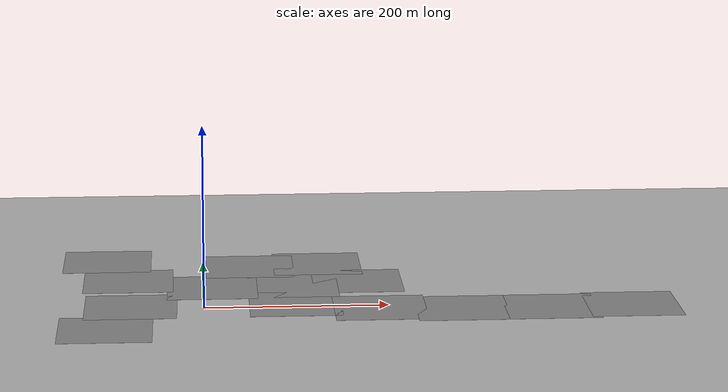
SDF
<sdf version="1.6">
 <world name="default">
  <light name="sun" type="directional">
   <pose>0 0 10 0 -0 0</pose>
   <diffuse>0.8 0.8 0.8 1</diffuse>
   <specular>0.2 0.2 0.2 1</specular>
   <attenuation>
    <range>1000</range>
    <constant>0.9</constant>
    <linear>0.01</linear>
    <quadratic>0.001</quadratic>
   </attenuation>
   <direction>-0.5 0.1 -0.9</direction>
  </light>
  <model name="ground_plane">
   <static>1</static>
   <link name="link">
    <collision name="collision">
     <geometry><plane><normal>0 0 1</normal><size>100 100</size></plane></geometry>
     <surface><friction><ode><mu>100</mu><mu2>50</mu2></ode></friction></surface>
    </collision>
    <visual name="visual">
     <cast_shadows>0</cast_shadows>
     <geometry><plane><normal>0 0 1</normal><size>100 100</size></plane></geometry>
     <material>
      <script><uri>file://media/materials/scripts/gazebo.material</uri><name>Gazebo/Grey</name></script>
     </material>
    </visual>
   </link>
  </model>
  <gravity>0 0 -9.8</gravity>
  <magnetic_field>6e-06 2.3e-05 -4.2e-05</magnetic_field>
  <atmosphere type="adiabatic"/>
  <physics name="default_physics" default="0" type="ode">
   <max_step_size>0.001</max_step_size>
   <real_time_factor>1</real_time_factor>
   <real_time_update_rate>1000</real_time_update_rate>
  </physics>
  <scene><ambient>0.4 0.4 0.4 1</ambient><background>0.7 0.7 0.7 1</background><shadows>1</shadows></scene>
  <spherical_coordinates>
   <surface_model>EARTH_WGS84</surface_model>
   <latitude_deg>0</latitude_deg>
   <longitude_deg>0</longitude_deg>
   <elevation>0</elevation>
   <heading_deg>0</heading_deg>
  </spherical_coordinates>
  <model name="ground_plane_0">
   <static>1</static>
   <link name="link">
    <collision name="collision">
     <geometry><plane><normal>0 0 1</normal><size>100 100</size></plane></geometry>
     <surface><friction><ode><mu>100</mu><mu2>50</mu2></ode></friction></surface>
    </collision>
    <visual name="visual">
     <cast_shadows>0</cast_shadows>
     <geometry><plane><normal>0 0 1</normal><size>100 100</size></plane></geometry>
     <material>
      <script><uri>file://media/materials/scripts/gazebo.material</uri><name>Gazebo/Grey</name></script>
     </material>
    </visual>
   </link>
   <pose>9.08164 85.6529 0 0 -0 0</pose>
  </model>
  <model name="ground_plane_1">
   <static>1</static>
   <link name="link">
    <collision name="collision">
     <geometry><plane><normal>0 0 1</normal><size>100 100</size></plane></geometry>
     <surface><friction><ode><mu>100</mu><mu2>50</mu2></ode></friction></surface>
    </collision>
    <visual name="visual">
     <cast_shadows>0</cast_shadows>
     <geometry><plane><normal>0 0 1</normal><size>100 100</size></plane></geometry>
     <material>
      <script><uri>file://media/materials/scripts/gazebo.material</uri><name>Gazebo/Grey</name></script>
     </material>
    </visual>
   </link>
   <pose>52.689 178.198 0 0 -0 0</pose>
  </model>
  <model name="ground_plane_2">
   <static>1</static>
   <link name="link">
    <collision name="collision">
     <geometry><plane><normal>0 0 1</normal><size>100 100</size></plane></geometry>
     <surface><friction><ode><mu>100</mu><mu2>50</mu2></ode></friction></surface>
    </collision>
    <visual name="visual">
     <cast_shadows>0</cast_shadows>
     <geometry><plane><normal>0 0 1</normal><size>100 100</size></plane></geometry>
     <material>
      <script><uri>file://media/materials/scripts/gazebo.material</uri><name>Gazebo/Grey</name></script>
     </material>
    </visual>
   </link>
   <pose>98.8791 88.8546 0 0 -0 0</pose>
  </model>
  <model name="ground_plane_3">
   <static>1</static>
   <link name="link">
    <collision name="collision">
     <geometry><plane><normal>0 0 1</normal><size>100 100</size></plane></geometry>
     <surface><friction><ode><mu>100</mu><mu2>50</mu2></ode></friction></surface>
    </collision>
    <visual name="visual">
     <cast_shadows>0</cast_shadows>
     <geometry><plane><normal>0 0 1</normal><size>100 100</size></plane></geometry>
     <material>
      <script><uri>file://media/materials/scripts/gazebo.material</uri><name>Gazebo/Grey</name></script>
     </material>
    </visual>
   </link>
   <pose>98.5092 10.0116 0 0 -0 0</pose>
  </model>
  <model name="ground_plane_4">
   <static>1</static>
   <link name="link">
    <collision name="collision">
     <geometry><plane><normal>0 0 1</normal><size>100 100</size></plane></geometry>
     <surface><friction><ode><mu>100</mu><mu2>50</mu2></ode></friction></surface>
    </collision>
    <visual name="visual">
     <cast_shadows>0</cast_shadows>
     <geometry><plane><normal>0 0 1</normal><size>100 100</size></plane></geometry>
     <material>
      <script><uri>file://media/materials/scripts/gazebo.material</uri><name>Gazebo/Grey</name></script>
     </material>
    </visual>
   </link>
   <pose>-84.1094 119.088 0 0 -0 0</pose>
  </model>
  <model name="ground_plane_5">
   <static>1</static>
   <link name="link">
    <collision name="collision">
     <geometry><plane><normal>0 0 1</normal><size>100 100</size></plane></geometry>
     <surface><friction><ode><mu>100</mu><mu2>50</mu2></ode></friction></surface>
    </collision>
    <visual name="visual">
     <cast_shadows>0</cast_shadows>
     <geometry><plane><normal>0 0 1</normal><size>100 100</size></plane></geometry>
     <material>
      <script><uri>file://media/materials/scripts/gazebo.material</uri><name>Gazebo/Grey</name></script>
     </material>
    </visual>
   </link>
   <pose>-109.728 210.299 0 0 -0 0</pose>
  </model>
  <model name="ground_plane_6">
   <static>1</static>
   <link name="link">
    <collision name="collision">
     <geometry><plane><normal>0 0 1</normal><size>100 100</size></plane></geometry>
     <surface><friction><ode><mu>100</mu><mu2>50</mu2></ode></friction></surface>
    </collision>
    <visual name="visual">
     <cast_shadows>0</cast_shadows>
     <geometry><plane><normal>0 0 1</normal><size>100 100</size></plane></geometry>
     <material>
      <script><uri>file://media/materials/scripts/gazebo.material</uri><name>Gazebo/Grey</name></script>
     </material>
    </visual>
   </link>
   <pose>-79.8518 8.27536 0 0 -0 0</pose>
  </model>
  <model name="ground_plane_7">
   <static>1</static>
   <link name="link">
    <collision name="collision">
     <geometry><plane><normal>0 0 1</normal><size>100 100</size></plane></geometry>
     <surface><friction><ode><mu>100</mu><mu2>50</mu2></ode></friction></surface>
    </collision>
    <visual name="visual">
     <cast_shadows>0</cast_shadows>
     <geometry><plane><normal>0 0 1</normal><size>100 100</size></plane></geometry>
     <material>
      <script><uri>file://media/materials/scripts/gazebo.material</uri><name>Gazebo/Grey</name></script>
     </material>
    </visual>
   </link>
   <pose>-105.192 -82.8629 0 0 -0 0</pose>
  </model>
  <model name="ground_plane_8">
   <static>1</static>
   <link name="link">
    <collision name="collision">
     <geometry><plane><normal>0 0 1</normal><size>100 100</size></plane></geometry>
     <surface><friction><ode><mu>100</mu><mu2>50</mu2></ode></friction></surface>
    </collision>
    <visual name="visual">
     <cast_shadows>0</cast_shadows>
     <geometry><plane><normal>0 0 1</normal><size>100 100</size></plane></geometry>
     <material>
      <script><uri>file://media/materials/scripts/gazebo.material</uri><name>Gazebo/Grey</name></script>
     </material>
    </visual>
   </link>
   <pose>189.625 -10.2705 0 0 -0 0</pose>
  </model>
  <model name="ground_plane_9">
   <static>1</static>
   <link name="link">
    <collision name="collision">
     <geometry><plane><normal>0 0 1</normal><size>100 100</size></plane></geometry>
     <surface><friction><ode><mu>100</mu><mu2>50</mu2></ode></friction></surface>
    </collision>
    <visual name="visual">
     <cast_shadows>0</cast_shadows>
     <geometry><plane><normal>0 0 1</normal><size>100 100</size></plane></geometry>
     <material>
      <script><uri>file://media/materials/scripts/gazebo.material</uri><name>Gazebo/Grey</name></script>
     </material>
    </visual>
   </link>
   <pose>277.847 -17.2407 0 0 -0 0</pose>
  </model>
  <model name="ground_plane_10">
   <static>1</static>
   <link name="link">
    <collision name="collision">
     <geometry><plane><normal>0 0 1</normal><size>100 100</size></plane></geometry>
     <surface><friction><ode><mu>100</mu><mu2>50</mu2></ode></friction></surface>
    </collision>
    <visual name="visual">
     <cast_shadows>0</cast_shadows>
     <geometry><plane><normal>0 0 1</normal><size>100 100</size></plane></geometry>
     <material>
      <script><uri>file://media/materials/scripts/gazebo.material</uri><name>Gazebo/Grey</name></script>
     </material>
    </visual>
   </link>
   <pose>374.655 -16.606 0 0 -0 0</pose>
  </model>
  <model name="ground_plane_11">
   <static>1</static>
   <link name="link">
    <collision name="collision">
     <geometry><plane><normal>0 0 1</normal><size>100 100</size></plane></geometry>
     <surface><friction><ode><mu>100</mu><mu2>50</mu2></ode></friction></surface>
    </collision>
    <visual name="visual">
     <cast_shadows>0</cast_shadows>
     <geometry><plane><normal>0 0 1</normal><size>100 100</size></plane></geometry>
     <material>
      <script><uri>file://media/materials/scripts/gazebo.material</uri><name>Gazebo/Grey</name></script>
     </material>
    </visual>
   </link>
   <pose>464.576 -11.9236 0 0 -0 0</pose>
  </model>
  <model name="ground_plane_12">
   <static>1</static>
   <link name="link">
    <collision name="collision">
     <geometry><plane><normal>0 0 1</normal><size>100 100</size></plane></geometry>
     <surface><friction><ode><mu>100</mu><mu2>50</mu2></ode></friction></surface>
    </collision>
    <visual name="visual">
     <cast_shadows>0</cast_shadows>
     <geometry><plane><normal>0 0 1</normal><size>100 100</size></plane></geometry>
     <material>
      <script><uri>file://media/materials/scripts/gazebo.material</uri><name>Gazebo/Grey</name></script>
     </material>
    </visual>
   </link>
   <pose>129.962 186.477 0 0 -0 0</pose>
  </model>
  <model name="ground_plane_13">
   <static>1</static>
   <link name="link">
    <collision name="collision">
     <geometry><plane><normal>0 0 1</normal><size>100 100</size></plane></geometry>
     <surface><friction><ode><mu>100</mu><mu2>50</mu2></ode></friction></surface>
    </collision>
    <visual name="visual">
     <cast_shadows>0</cast_shadows>
     <geometry><plane><normal>0 0 1</normal><size>100 100</size></plane></geometry>
     <material>
      <script><uri>file://media/materials/scripts/gazebo.material</uri><name>Gazebo/Grey</name></script>
     </material>
    </visual>
   </link>
   <pose>171.708 105.577 0 0 -0 0</pose>
  </model>
 </world>
</sdf>
